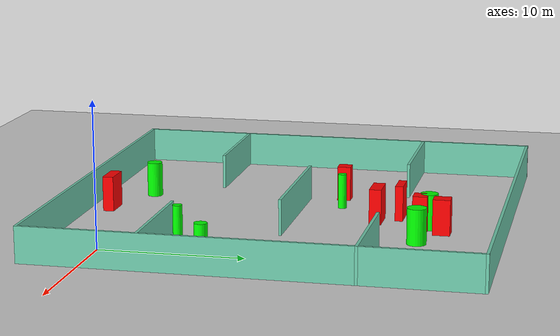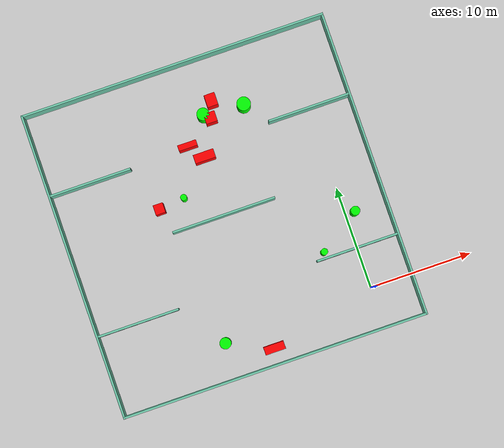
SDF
<sdf version="1.7">
 <world name="default">
  <light name="sun" type="directional">
   <pose>0 0 10 0 -0 0</pose>
   <diffuse>0.8 0.8 0.8 1</diffuse>
   <specular>0.2 0.2 0.2 1</specular>
   <attenuation>
    <range>1000</range>
    <constant>0.9</constant>
    <linear>0.01</linear>
    <quadratic>0.001</quadratic>
   </attenuation>
   <direction>-0.5 0.1 -0.9</direction>
   <spot><inner_angle>0</inner_angle><outer_angle>0</outer_angle><falloff>0</falloff></spot>
  </light>
  <model name="ground_plane">
   <static>1</static>
   <link name="link">
    <collision name="collision">
     <geometry><plane><normal>0 0 1</normal><size>100 100</size></plane></geometry>
     <surface>
      <contact><collide_bitmask>65535</collide_bitmask></contact>
      <friction><ode><mu>100</mu><mu2>50</mu2></ode></friction>
     </surface>
    </collision>
    <visual name="visual">
     <cast_shadows>0</cast_shadows>
     <geometry><plane><normal>0 0 1</normal><size>100 100</size></plane></geometry>
     <material>
      <script><uri>file://media/materials/scripts/gazebo.material</uri><name>Gazebo/Grey</name></script>
     </material>
    </visual>
   </link>
  </model>
  <gravity>0 0 -9.8</gravity>
  <magnetic_field>6e-06 2.3e-05 -4.2e-05</magnetic_field>
  <atmosphere type="adiabatic"/>
  <physics type="ode">
   <max_step_size>0.001</max_step_size>
   <real_time_factor>1</real_time_factor>
   <real_time_update_rate>1000</real_time_update_rate>
  </physics>
  <scene><ambient>0.4 0.4 0.4 1</ambient><background>0.7 0.7 0.7 1</background><shadows>1</shadows></scene>
  <spherical_coordinates>
   <surface_model>EARTH_WGS84</surface_model>
   <latitude_deg>0</latitude_deg>
   <longitude_deg>0</longitude_deg>
   <elevation>0</elevation>
   <heading_deg>0</heading_deg>
  </spherical_coordinates>
  <model name="my_base_walls">
   <link name="Wall_10">
    <collision name="Wall_10_Collision">
     <geometry><box><size>8.2 0.2 2.5</size></box></geometry>
     <pose>0 0 1.25 0 -0 0</pose>
    </collision>
    <visual name="Wall_10_Visual">
     <pose>0 0 1.25 0 -0 0</pose>
     <geometry><box><size>8.2 0.2 2.5</size></box></geometry>
     <material>
      <script><uri>file://media/materials/scripts/gazebo.material</uri><name>Gazebo/Grey</name></script>
      <ambient>0.435294 0.796078 0.67451 1</ambient>
     </material>
     <meta><layer>0</layer></meta>
    </visual>
    <pose>-11 -7 0 0 -0 0</pose>
   </link>
   <link name="Wall_12">
    <collision name="Wall_12_Collision">
     <geometry><box><size>8.2 0.2 2.5</size></box></geometry>
     <pose>0 0 1.25 0 -0 0</pose>
    </collision>
    <visual name="Wall_12_Visual">
     <pose>0 0 1.25 0 -0 0</pose>
     <geometry><box><size>8.2 0.2 2.5</size></box></geometry>
     <material>
      <script><uri>file://media/materials/scripts/gazebo.material</uri><name>Gazebo/Grey</name></script>
      <ambient>0.435294 0.796078 0.67451 1</ambient>
     </material>
     <meta><layer>0</layer></meta>
    </visual>
    <pose>-11 7 0 0 -0 0</pose>
   </link>
   <link name="Wall_14">
    <collision name="Wall_14_Collision">
     <geometry><box><size>8.2 0.2 2.5</size></box></geometry>
     <pose>0 0 1.25 0 -0 0</pose>
    </collision>
    <visual name="Wall_14_Visual">
     <pose>0 0 1.25 0 -0 0</pose>
     <geometry><box><size>8.2 0.2 2.5</size></box></geometry>
     <material>
      <script><uri>file://media/materials/scripts/gazebo.material</uri><name>Gazebo/Grey</name></script>
      <ambient>0.435294 0.796078 0.67451 1</ambient>
     </material>
     <meta><layer>0</layer></meta>
    </visual>
    <pose>11 7 0 0 -0 3.14159</pose>
   </link>
   <link name="Wall_16">
    <collision name="Wall_16_Collision">
     <geometry><box><size>10.2 0.2 2.5</size></box></geometry>
     <pose>0 0 1.25 0 -0 0</pose>
    </collision>
    <visual name="Wall_16_Visual">
     <pose>0 0 1.25 0 -0 0</pose>
     <geometry><box><size>10.2 0.2 2.5</size></box></geometry>
     <material>
      <script><uri>file://media/materials/scripts/gazebo.material</uri><name>Gazebo/Grey</name></script>
      <ambient>0.435294 0.796078 0.67451 1</ambient>
     </material>
     <meta><layer>0</layer></meta>
    </visual>
    <pose>0 0 0 0 -0 3.14159</pose>
   </link>
   <link name="Wall_2">
    <collision name="Wall_2_Collision">
     <geometry><box><size>30.2 0.2 2.5</size></box></geometry>
     <pose>0 0 1.25 0 -0 0</pose>
    </collision>
    <visual name="Wall_2_Visual">
     <pose>0 0 1.25 0 -0 0</pose>
     <geometry><box><size>30.2 0.2 2.5</size></box></geometry>
     <material>
      <script><uri>file://media/materials/scripts/gazebo.material</uri><name>Gazebo/Grey</name></script>
      <ambient>0.435294 0.796078 0.67451 1</ambient>
     </material>
     <meta><layer>0</layer></meta>
    </visual>
    <pose>0 -15 0 0 -0 3.14159</pose>
   </link>
   <link name="Wall_3">
    <collision name="Wall_3_Collision">
     <geometry><box><size>30.2 0.2 2.5</size></box></geometry>
     <pose>0 0 1.25 0 -0 0</pose>
    </collision>
    <visual name="Wall_3_Visual">
     <pose>0 0 1.25 0 -0 0</pose>
     <geometry><box><size>30.2 0.2 2.5</size></box></geometry>
     <material>
      <script><uri>file://media/materials/scripts/gazebo.material</uri><name>Gazebo/Grey</name></script>
      <ambient>0.435294 0.796078 0.67451 1</ambient>
     </material>
     <meta><layer>0</layer></meta>
    </visual>
    <pose>-15 0 0 0 -0 1.5708</pose>
   </link>
   <link name="Wall_4">
    <collision name="Wall_4_Collision">
     <geometry><box><size>30.2 0.2 2.5</size></box></geometry>
     <pose>0 0 1.25 0 -0 0</pose>
    </collision>
    <visual name="Wall_4_Visual">
     <pose>0 0 1.25 0 -0 0</pose>
     <geometry><box><size>30.2 0.2 2.5</size></box></geometry>
     <material>
      <script><uri>file://media/materials/scripts/gazebo.material</uri><name>Gazebo/Grey</name></script>
      <ambient>0.435294 0.796078 0.67451 1</ambient>
     </material>
     <meta><layer>0</layer></meta>
    </visual>
    <pose>0 15 0 0 -0 0</pose>
   </link>
   <link name="Wall_6">
    <collision name="Wall_6_Collision">
     <geometry><box><size>30.2 0.2 2.5</size></box></geometry>
     <pose>0 0 1.25 0 -0 0</pose>
    </collision>
    <visual name="Wall_6_Visual">
     <pose>0 0 1.25 0 -0 0</pose>
     <geometry><box><size>30.2 0.2 2.5</size></box></geometry>
     <material>
      <script><uri>file://media/materials/scripts/gazebo.material</uri><name>Gazebo/Grey</name></script>
      <ambient>0.435294 0.796078 0.67451 1</ambient>
     </material>
     <meta><layer>0</layer></meta>
    </visual>
    <pose>15 0 0 0 -0 1.5708</pose>
   </link>
   <link name="Wall_8">
    <collision name="Wall_8_Collision">
     <geometry><box><size>8.2 0.2 2.5</size></box></geometry>
     <pose>0 0 1.25 0 -0 0</pose>
    </collision>
    <visual name="Wall_8_Visual">
     <pose>0 0 1.25 0 -0 0</pose>
     <geometry><box><size>8.2 0.2 2.5</size></box></geometry>
     <material>
      <script><uri>file://media/materials/scripts/gazebo.material</uri><name>Gazebo/Grey</name></script>
      <ambient>0.435294 0.796078 0.67451 1</ambient>
     </material>
     <meta><layer>0</layer></meta>
    </visual>
    <pose>11 -7 0 0 -0 3.14159</pose>
   </link>
   <static>1</static>
   <pose>-11 11 0 0 -0 0</pose>
  </model>
  <model name="cylinder1">
   <static>1</static>
   <link name="link">
    <inertial>
     <mass>1</mass>
     <inertia><ixx>0.5</ixx><ixy>0</ixy><ixz>0</ixz><iyy>0.5</iyy><iyz>0</iyz><izz>1</izz></inertia>
    </inertial>
    <collision name="collision">
     <geometry><cylinder><radius>0.6698452326739066</radius><length>2.5</length></cylinder></geometry>
    </collision>
    <visual name="visual">
     <geometry><cylinder><radius>0.6698452326739066</radius><length>2.5</length></cylinder></geometry>
     <material>
      <ambient>0 1 0 1</ambient>
      <diffuse>0 1 0 1</diffuse>
      <specular>0.1 0.1 0.1 1</specular>
      <emissive>0 0 0 0</emissive>
     </material>
    </visual>
   </link>
   <pose>-5.793982672437181 20.330197371773288 1.25 0 0 0</pose>
  </model>
  <model name="cylinder2">
   <static>1</static>
   <link name="link">
    <inertial>
     <mass>1</mass>
     <inertia><ixx>0.5</ixx><ixy>0</ixy><ixz>0</ixz><iyy>0.5</iyy><iyz>0</iyz><izz>1</izz></inertia>
    </inertial>
    <collision name="collision">
     <geometry><cylinder><radius>0.6107542865907181</radius><length>2.5</length></cylinder></geometry>
    </collision>
    <visual name="visual">
     <geometry><cylinder><radius>0.6107542865907181</radius><length>2.5</length></cylinder></geometry>
     <material>
      <ambient>0 1 0 1</ambient>
      <diffuse>0 1 0 1</diffuse>
      <specular>0.1 0.1 0.1 1</specular>
      <emissive>0 0 0 0</emissive>
     </material>
    </visual>
   </link>
   <pose>-9.743738966134195 20.638719490929084 1.25 0 0 0</pose>
  </model>
  <model name="cylinder3">
   <static>1</static>
   <link name="link">
    <inertial>
     <mass>1</mass>
     <inertia><ixx>0.5</ixx><ixy>0</ixy><ixz>0</ixz><iyy>0.5</iyy><iyz>0</iyz><izz>1</izz></inertia>
    </inertial>
    <collision name="collision">
     <geometry><cylinder><radius>0.5491732352428095</radius><length>2.5</length></cylinder></geometry>
    </collision>
    <visual name="visual">
     <geometry><cylinder><radius>0.5491732352428095</radius><length>2.5</length></cylinder></geometry>
     <material>
      <ambient>0 1 0 1</ambient>
      <diffuse>0 1 0 1</diffuse>
      <specular>0.1 0.1 0.1 1</specular>
      <emissive>0 0 0 0</emissive>
     </material>
    </visual>
   </link>
   <pose>-14.775111439778108 -0.47430952551644 1.25 0 0 0</pose>
  </model>
  <model name="cylinder4">
   <static>1</static>
   <link name="link">
    <inertial>
     <mass>1</mass>
     <inertia><ixx>0.5</ixx><ixy>0</ixy><ixz>0</ixz><iyy>0.5</iyy><iyz>0</iyz><izz>1</izz></inertia>
    </inertial>
    <collision name="collision">
     <geometry><cylinder><radius>0.327174041672286</radius><length>2.5</length></cylinder></geometry>
    </collision>
    <visual name="visual">
     <geometry><cylinder><radius>0.327174041672286</radius><length>2.5</length></cylinder></geometry>
     <material>
      <ambient>0 1 0 1</ambient>
      <diffuse>0 1 0 1</diffuse>
      <specular>0.1 0.1 0.1 1</specular>
      <emissive>0 0 0 0</emissive>
     </material>
    </visual>
   </link>
   <pose>-3.166550957835849 4.614781436955452 1.25 0 0 0</pose>
  </model>
  <model name="cylinder5">
   <static>1</static>
   <link name="link">
    <inertial>
     <mass>1</mass>
     <inertia><ixx>0.5</ixx><ixy>0</ixy><ixz>0</ixz><iyy>0.5</iyy><iyz>0</iyz><izz>1</izz></inertia>
    </inertial>
    <collision name="collision">
     <geometry><cylinder><radius>0.44739860094689077</radius><length>2.5</length></cylinder></geometry>
    </collision>
    <visual name="visual">
     <geometry><cylinder><radius>0.44739860094689077</radius><length>2.5</length></cylinder></geometry>
     <material>
      <ambient>0 1 0 1</ambient>
      <diffuse>0 1 0 1</diffuse>
      <specular>0.1 0.1 0.1 1</specular>
      <emissive>0 0 0 0</emissive>
     </material>
    </visual>
   </link>
   <pose>0.8591579684133848 7.318560733742171 1.25 0 0 0</pose>
  </model>
  <model name="cylinder6">
   <static>1</static>
   <link name="link">
    <inertial>
     <mass>1</mass>
     <inertia><ixx>0.5</ixx><ixy>0</ixy><ixz>0</ixz><iyy>0.5</iyy><iyz>0</iyz><izz>1</izz></inertia>
    </inertial>
    <collision name="collision">
     <geometry><cylinder><radius>0.30682026260820944</radius><length>2.5</length></cylinder></geometry>
    </collision>
    <visual name="visual">
     <geometry><cylinder><radius>0.30682026260820944</radius><length>2.5</length></cylinder></geometry>
     <material>
      <ambient>0 1 0 1</ambient>
      <diffuse>0 1 0 1</diffuse>
      <specular>0.1 0.1 0.1 1</specular>
      <emissive>0 0 0 0</emissive>
     </material>
    </visual>
   </link>
   <pose>-14.034896031419873 13.788540586932346 1.25 0 0 0</pose>
  </model>
  <model name="box1">
   <static>1</static>
   <link name="link">
    <inertial>
     <mass>1</mass>
     <inertia><ixx>0.083</ixx><ixy>0</ixy><ixz>0</ixz><iyy>0.083</iyy><iyz>0</iyz><izz>0.083</izz></inertia>
    </inertial>
    <collision name="collision">
     <geometry><box><size>1.04386332953887 1.2014315046234563 2.5</size></box></geometry>
    </collision>
    <visual name="visual">
     <geometry><box><size>1.04386332953887 1.2014315046234563 2.5</size></box></geometry>
     <material>
      <ambient>1 0 0 1</ambient>
      <diffuse>1 0 0 1</diffuse>
      <specular>0.1 0.1 0.1 1</specular>
      <emissive>0 0 0 0</emissive>
     </material>
    </visual>
    <sensor name="my_contact" type="contact">
     <contact><collision>box_collision</collision><topic>__default_topic__</topic></contact>
    </sensor>
   </link>
   <pose>-8.593450610999302 21.67759125097945 1.25 0 0 0</pose>
  </model>
  <model name="box2">
   <static>1</static>
   <link name="link">
    <inertial>
     <mass>1</mass>
     <inertia><ixx>0.083</ixx><ixy>0</ixy><ixz>0</ixz><iyy>0.083</iyy><iyz>0</iyz><izz>0.083</izz></inertia>
    </inertial>
    <collision name="collision">
     <geometry><box><size>1.9843113984723015 0.7674331823066288 2.5</size></box></geometry>
    </collision>
    <visual name="visual">
     <geometry><box><size>1.9843113984723015 0.7674331823066288 2.5</size></box></geometry>
     <material>
      <ambient>1 0 0 1</ambient>
      <diffuse>1 0 0 1</diffuse>
      <specular>0.1 0.1 0.1 1</specular>
      <emissive>0 0 0 0</emissive>
     </material>
    </visual>
    <sensor name="my_contact" type="contact">
     <contact><collision>box_collision</collision><topic>__default_topic__</topic></contact>
    </sensor>
   </link>
   <pose>-10.558813748921356 -2.3964825809016146 1.25 0 0 0</pose>
  </model>
  <model name="box3">
   <static>1</static>
   <link name="link">
    <inertial>
     <mass>1</mass>
     <inertia><ixx>0.083</ixx><ixy>0</ixy><ixz>0</ixz><iyy>0.083</iyy><iyz>0</iyz><izz>0.083</izz></inertia>
    </inertial>
    <collision name="collision">
     <geometry><box><size>1.092652042048976 1.011187424384639 2.5</size></box></geometry>
    </collision>
    <visual name="visual">
     <geometry><box><size>1.092652042048976 1.011187424384639 2.5</size></box></geometry>
     <material>
      <ambient>1 0 0 1</ambient>
      <diffuse>1 0 0 1</diffuse>
      <specular>0.1 0.1 0.1 1</specular>
      <emissive>0 0 0 0</emissive>
     </material>
    </visual>
    <sensor name="my_contact" type="contact">
     <contact><collision>box_collision</collision><topic>__default_topic__</topic></contact>
    </sensor>
   </link>
   <pose>-9.185623232617068 20.12414455991754 1.25 0 0 0</pose>
  </model>
  <model name="box4">
   <static>1</static>
   <link name="link">
    <inertial>
     <mass>1</mass>
     <inertia><ixx>0.083</ixx><ixy>0</ixy><ixz>0</ixz><iyy>0.083</iyy><iyz>0</iyz><izz>0.083</izz></inertia>
    </inertial>
    <collision name="collision">
     <geometry><box><size>2.0093559473449187 0.8437614792389914 2.5</size></box></geometry>
    </collision>
    <visual name="visual">
     <geometry><box><size>2.0093559473449187 0.8437614792389914 2.5</size></box></geometry>
     <material>
      <ambient>1 0 0 1</ambient>
      <diffuse>1 0 0 1</diffuse>
      <specular>0.1 0.1 0.1 1</specular>
      <emissive>0 0 0 0</emissive>
     </material>
    </visual>
    <sensor name="my_contact" type="contact">
     <contact><collision>box_collision</collision><topic>__default_topic__</topic></contact>
    </sensor>
   </link>
   <pose>-10.92158886871241 16.8394369053609 1.25 0 0 0</pose>
  </model>
  <model name="box5">
   <static>1</static>
   <link name="link">
    <inertial>
     <mass>1</mass>
     <inertia><ixx>0.083</ixx><ixy>0</ixy><ixz>0</ixz><iyy>0.083</iyy><iyz>0</iyz><izz>0.083</izz></inertia>
    </inertial>
    <collision name="collision">
     <geometry><box><size>1.8276986005575822 0.5529205434464116 2.5</size></box></geometry>
    </collision>
    <visual name="visual">
     <geometry><box><size>1.8276986005575822 0.5529205434464116 2.5</size></box></geometry>
     <material>
      <ambient>1 0 0 1</ambient>
      <diffuse>1 0 0 1</diffuse>
      <specular>0.1 0.1 0.1 1</specular>
      <emissive>0 0 0 0</emissive>
     </material>
    </visual>
    <sensor name="my_contact" type="contact">
     <contact><collision>box_collision</collision><topic>__default_topic__</topic></contact>
    </sensor>
   </link>
   <pose>-12.09865424789797 18.323871864202392 1.25 0 0 0</pose>
  </model>
  <model name="box6">
   <static>1</static>
   <link name="link">
    <inertial>
     <mass>1</mass>
     <inertia><ixx>0.083</ixx><ixy>0</ixy><ixz>0</ixz><iyy>0.083</iyy><iyz>0</iyz><izz>0.083</izz></inertia>
    </inertial>
    <collision name="collision">
     <geometry><box><size>0.9557805190951167 0.9574839970116009 2.5</size></box></geometry>
    </collision>
    <visual name="visual">
     <geometry><box><size>0.9557805190951167 0.9574839970116009 2.5</size></box></geometry>
     <material>
      <ambient>1 0 0 1</ambient>
      <diffuse>1 0 0 1</diffuse>
      <specular>0.1 0.1 0.1 1</specular>
      <emissive>0 0 0 0</emissive>
     </material>
    </visual>
    <sensor name="my_contact" type="contact">
     <contact><collision>box_collision</collision><topic>__default_topic__</topic></contact>
    </sensor>
   </link>
   <pose>-16.563445326358554 13.511204762714513 1.25 0 0 0</pose>
  </model>
 </world>
</sdf>
